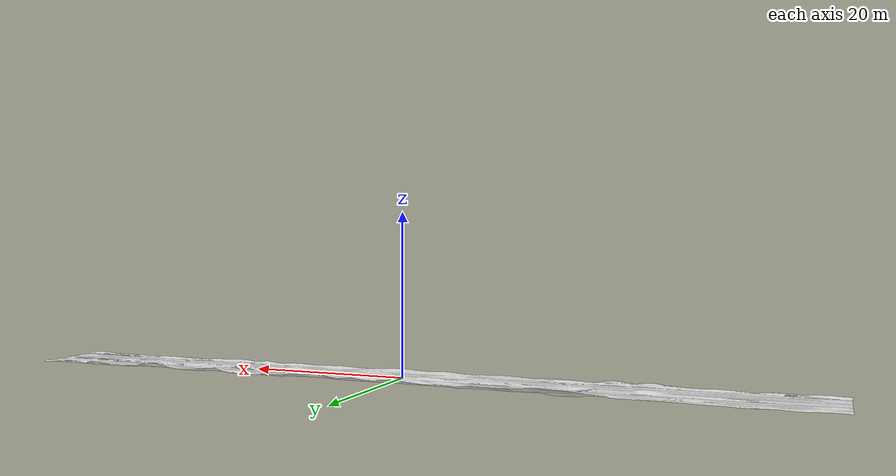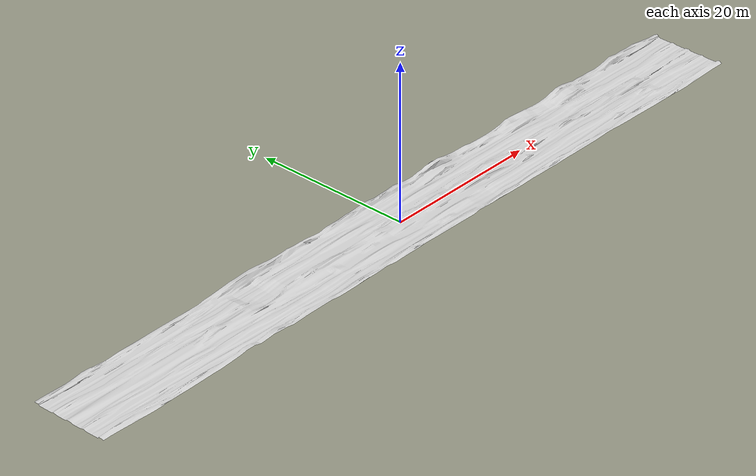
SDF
<?xml version="1.0"?>
<sdf version="1.9">
  <model name="vineyard_mesh">
    <static>true</static>
    <link name="terrain">
      <collision name="col">
        <geometry>
          <mesh>
            <uri>model://vineyard_mesh/meshes/terrain.dae</uri>
            <scale>1 1 1</scale>
          </mesh>
        </geometry>
      </collision>
      <visual name="vis">
        <geometry>
          <mesh>
            <uri>model://vineyard_mesh/meshes/terrain.dae</uri>
            <scale>1 1 1</scale>
          </mesh>
        </geometry>
      </visual>
    </link>
  </model>
</sdf>
